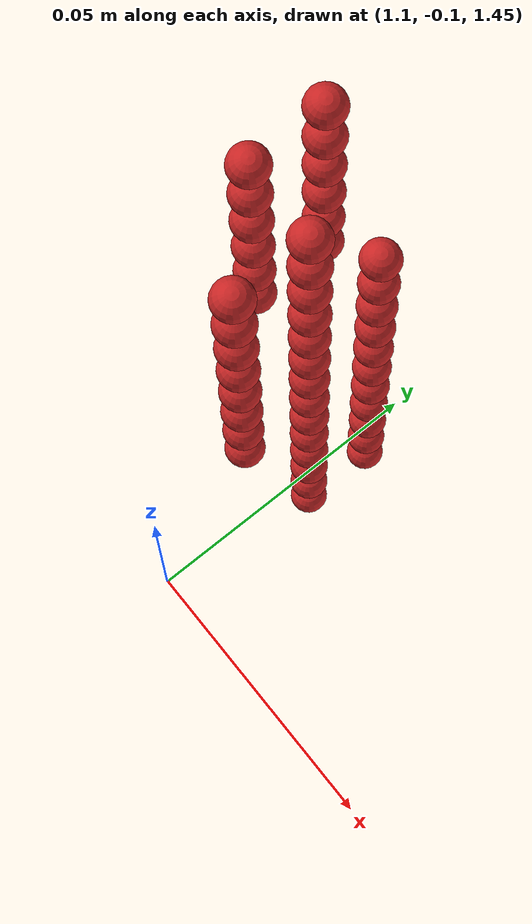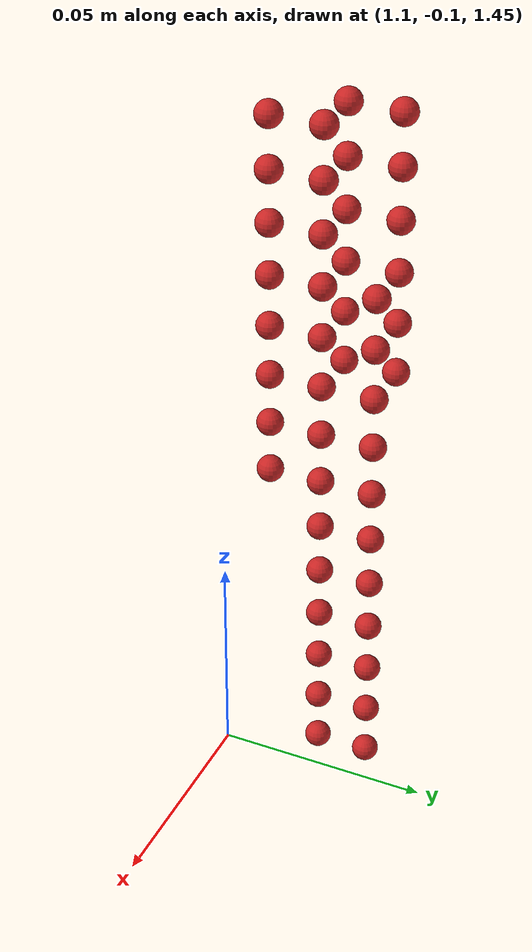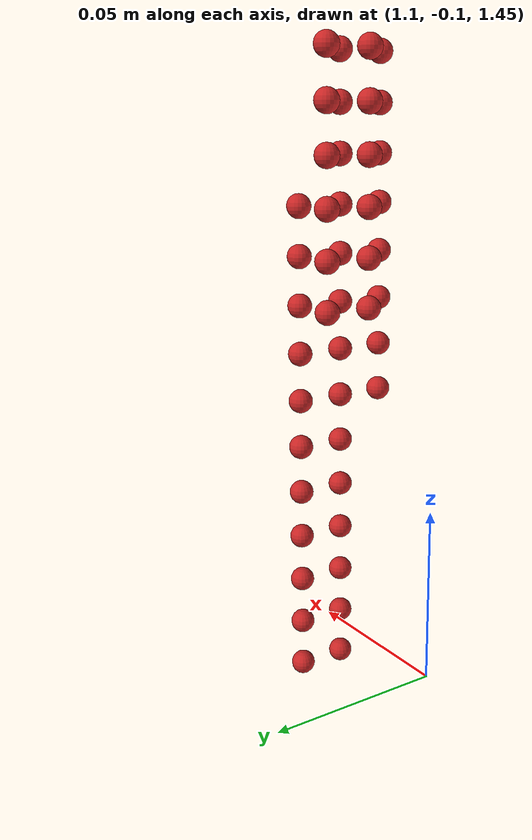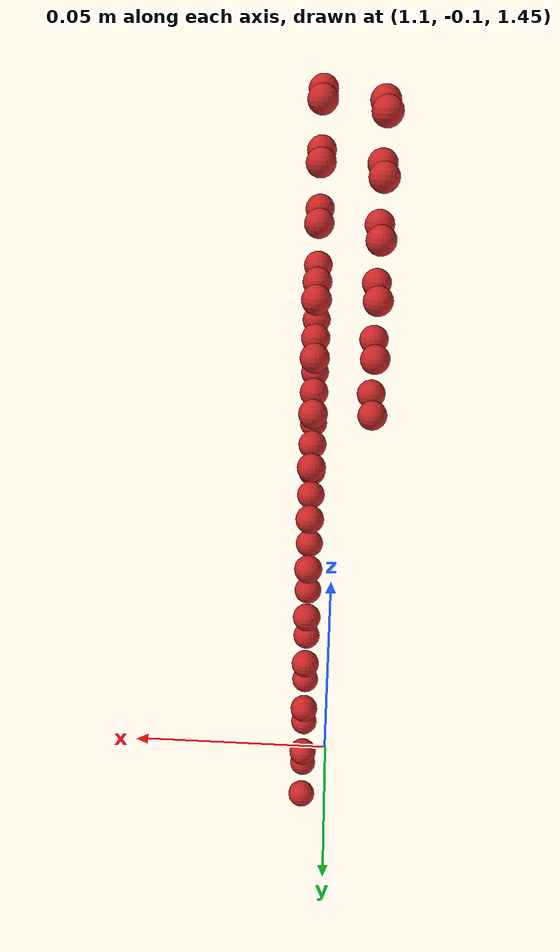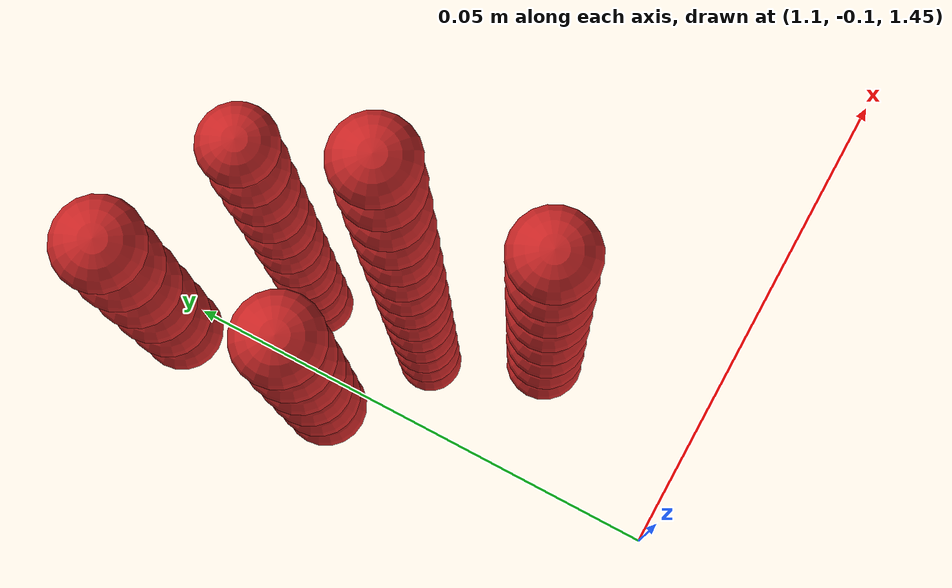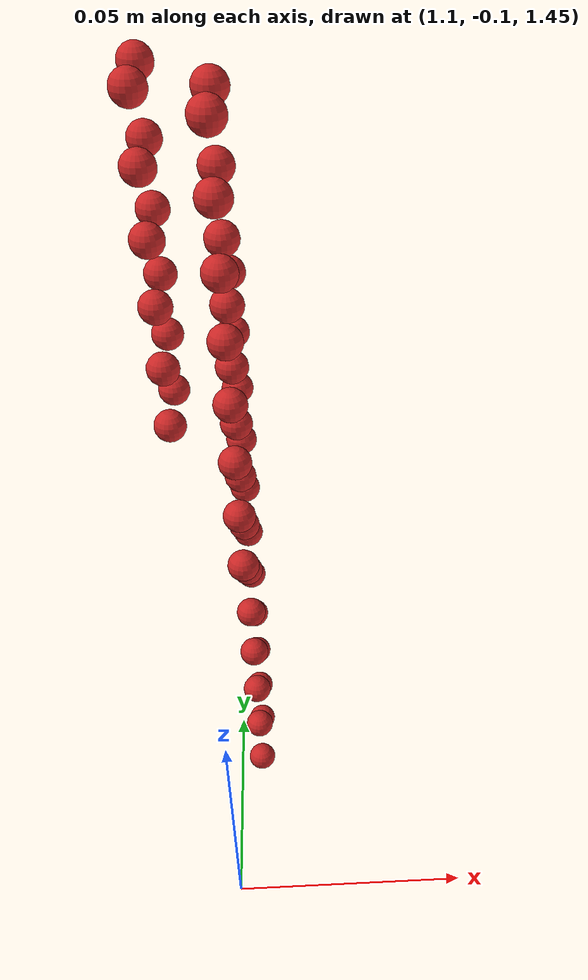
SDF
<sdf version="1.4">
 <world name="default">
  <model name="ground_plane">
   <static>1</static>
   <link name="link">
    <collision name="collision">
     <geometry><plane><normal>0 0 1</normal><size>100 100</size></plane></geometry>
     <surface><friction><ode><mu>100</mu><mu2>50</mu2></ode></friction></surface>
    </collision>
    <visual name="visual">
     <cast_shadows>0</cast_shadows>
     <geometry><plane><normal>0 0 1</normal><size>100 100</size></plane></geometry>
     <material>
      <script><uri>file://media/materials/scripts/gazebo.material</uri><name>Gazebo/Grey</name></script>
     </material>
    </visual>
    <velocity_decay><linear>0</linear><angular>0</angular></velocity_decay>
   </link>
  </model>
  <model name="sphere10">
   <pose>0.552760 -0.036781 0.732288 0 0 0</pose>
   <link name="link">
    <pose>0.552760 -0.036781 0.732288 0 0 0</pose>
    <inertial>
     <mass>0.001</mass>
     <inertia>
      <ixx>0.004</ixx>
      <ixy>0.000000</ixy>
      <ixz>0.000000</ixz>
      <iyy>0.004</iyy>
      <iyz>0.000000</iyz>
      <izz>0.004</izz>
     </inertia>
    </inertial>
    <collision name="collision">
     <surface>
      <contact><ode><kp>10000000000.000000</kp><kd>1</kd></ode></contact>
      <friction><ode><mu>0.01</mu><mu2>0.01</mu2></ode></friction>
     </surface>
     <geometry><sphere><radius>0.003</radius></sphere></geometry>
    </collision>
    <visual name="visual">
     <geometry><sphere><radius>0.003</radius></sphere></geometry>
     <material>
      <script><uri>file://media/materials/scripts/gazebo.material</uri><name>Gazebo/Red</name></script>
     </material>
    </visual>
   </link>
  </model>
  <model name="sphere14">
   <pose>0.552760 -0.030781 0.732288 0 0 0</pose>
   <link name="link">
    <pose>0.552760 -0.030781 0.732288 0 0 0</pose>
    <inertial>
     <mass>0.001</mass>
     <inertia>
      <ixx>0.004</ixx>
      <ixy>0.000000</ixy>
      <ixz>0.000000</ixz>
      <iyy>0.004</iyy>
      <iyz>0.000000</iyz>
      <izz>0.004</izz>
     </inertia>
    </inertial>
    <collision name="collision">
     <surface>
      <contact><ode><kp>10000000000.000000</kp><kd>1</kd></ode></contact>
      <friction><ode><mu>0.01</mu><mu2>0.01</mu2></ode></friction>
     </surface>
     <geometry><sphere><radius>0.003</radius></sphere></geometry>
    </collision>
    <visual name="visual">
     <geometry><sphere><radius>0.003</radius></sphere></geometry>
     <material>
      <script><uri>file://media/materials/scripts/gazebo.material</uri><name>Gazebo/Red</name></script>
     </material>
    </visual>
   </link>
  </model>
  <model name="sphere26">
   <pose>0.552760 -0.036781 0.738288 0 0 0</pose>
   <link name="link">
    <pose>0.552760 -0.036781 0.738288 0 0 0</pose>
    <inertial>
     <mass>0.001</mass>
     <inertia>
      <ixx>0.004</ixx>
      <ixy>0.000000</ixy>
      <ixz>0.000000</ixz>
      <iyy>0.004</iyy>
      <iyz>0.000000</iyz>
      <izz>0.004</izz>
     </inertia>
    </inertial>
    <collision name="collision">
     <surface>
      <contact><ode><kp>10000000000.000000</kp><kd>1</kd></ode></contact>
      <friction><ode><mu>0.01</mu><mu2>0.01</mu2></ode></friction>
     </surface>
     <geometry><sphere><radius>0.003</radius></sphere></geometry>
    </collision>
    <visual name="visual">
     <geometry><sphere><radius>0.003</radius></sphere></geometry>
     <material>
      <script><uri>file://media/materials/scripts/gazebo.material</uri><name>Gazebo/Red</name></script>
     </material>
    </visual>
   </link>
  </model>
  <model name="sphere30">
   <pose>0.552760 -0.030781 0.738288 0 0 0</pose>
   <link name="link">
    <pose>0.552760 -0.030781 0.738288 0 0 0</pose>
    <inertial>
     <mass>0.001</mass>
     <inertia>
      <ixx>0.004</ixx>
      <ixy>0.000000</ixy>
      <ixz>0.000000</ixz>
      <iyy>0.004</iyy>
      <iyz>0.000000</iyz>
      <izz>0.004</izz>
     </inertia>
    </inertial>
    <collision name="collision">
     <surface>
      <contact><ode><kp>10000000000.000000</kp><kd>1</kd></ode></contact>
      <friction><ode><mu>0.01</mu><mu2>0.01</mu2></ode></friction>
     </surface>
     <geometry><sphere><radius>0.003</radius></sphere></geometry>
    </collision>
    <visual name="visual">
     <geometry><sphere><radius>0.003</radius></sphere></geometry>
     <material>
      <script><uri>file://media/materials/scripts/gazebo.material</uri><name>Gazebo/Red</name></script>
     </material>
    </visual>
   </link>
  </model>
  <model name="sphere42">
   <pose>0.552760 -0.036781 0.744288 0 0 0</pose>
   <link name="link">
    <pose>0.552760 -0.036781 0.744288 0 0 0</pose>
    <inertial>
     <mass>0.001</mass>
     <inertia>
      <ixx>0.004</ixx>
      <ixy>0.000000</ixy>
      <ixz>0.000000</ixz>
      <iyy>0.004</iyy>
      <iyz>0.000000</iyz>
      <izz>0.004</izz>
     </inertia>
    </inertial>
    <collision name="collision">
     <surface>
      <contact><ode><kp>10000000000.000000</kp><kd>1</kd></ode></contact>
      <friction><ode><mu>0.01</mu><mu2>0.01</mu2></ode></friction>
     </surface>
     <geometry><sphere><radius>0.003</radius></sphere></geometry>
    </collision>
    <visual name="visual">
     <geometry><sphere><radius>0.003</radius></sphere></geometry>
     <material>
      <script><uri>file://media/materials/scripts/gazebo.material</uri><name>Gazebo/Red</name></script>
     </material>
    </visual>
   </link>
  </model>
  <model name="sphere46">
   <pose>0.552760 -0.030781 0.744288 0 0 0</pose>
   <link name="link">
    <pose>0.552760 -0.030781 0.744288 0 0 0</pose>
    <inertial>
     <mass>0.001</mass>
     <inertia>
      <ixx>0.004</ixx>
      <ixy>0.000000</ixy>
      <ixz>0.000000</ixz>
      <iyy>0.004</iyy>
      <iyz>0.000000</iyz>
      <izz>0.004</izz>
     </inertia>
    </inertial>
    <collision name="collision">
     <surface>
      <contact><ode><kp>10000000000.000000</kp><kd>1</kd></ode></contact>
      <friction><ode><mu>0.01</mu><mu2>0.01</mu2></ode></friction>
     </surface>
     <geometry><sphere><radius>0.003</radius></sphere></geometry>
    </collision>
    <visual name="visual">
     <geometry><sphere><radius>0.003</radius></sphere></geometry>
     <material>
      <script><uri>file://media/materials/scripts/gazebo.material</uri><name>Gazebo/Red</name></script>
     </material>
    </visual>
   </link>
  </model>
  <model name="sphere58">
   <pose>0.552760 -0.036781 0.750288 0 0 0</pose>
   <link name="link">
    <pose>0.552760 -0.036781 0.750288 0 0 0</pose>
    <inertial>
     <mass>0.001</mass>
     <inertia>
      <ixx>0.004</ixx>
      <ixy>0.000000</ixy>
      <ixz>0.000000</ixz>
      <iyy>0.004</iyy>
      <iyz>0.000000</iyz>
      <izz>0.004</izz>
     </inertia>
    </inertial>
    <collision name="collision">
     <surface>
      <contact><ode><kp>10000000000.000000</kp><kd>1</kd></ode></contact>
      <friction><ode><mu>0.01</mu><mu2>0.01</mu2></ode></friction>
     </surface>
     <geometry><sphere><radius>0.003</radius></sphere></geometry>
    </collision>
    <visual name="visual">
     <geometry><sphere><radius>0.003</radius></sphere></geometry>
     <material>
      <script><uri>file://media/materials/scripts/gazebo.material</uri><name>Gazebo/Red</name></script>
     </material>
    </visual>
   </link>
  </model>
  <model name="sphere62">
   <pose>0.552760 -0.030781 0.750288 0 0 0</pose>
   <link name="link">
    <pose>0.552760 -0.030781 0.750288 0 0 0</pose>
    <inertial>
     <mass>0.001</mass>
     <inertia>
      <ixx>0.004</ixx>
      <ixy>0.000000</ixy>
      <ixz>0.000000</ixz>
      <iyy>0.004</iyy>
      <iyz>0.000000</iyz>
      <izz>0.004</izz>
     </inertia>
    </inertial>
    <collision name="collision">
     <surface>
      <contact><ode><kp>10000000000.000000</kp><kd>1</kd></ode></contact>
      <friction><ode><mu>0.01</mu><mu2>0.01</mu2></ode></friction>
     </surface>
     <geometry><sphere><radius>0.003</radius></sphere></geometry>
    </collision>
    <visual name="visual">
     <geometry><sphere><radius>0.003</radius></sphere></geometry>
     <material>
      <script><uri>file://media/materials/scripts/gazebo.material</uri><name>Gazebo/Red</name></script>
     </material>
    </visual>
   </link>
  </model>
  <model name="sphere74">
   <pose>0.552760 -0.036781 0.756288 0 0 0</pose>
   <link name="link">
    <pose>0.552760 -0.036781 0.756288 0 0 0</pose>
    <inertial>
     <mass>0.001</mass>
     <inertia>
      <ixx>0.004</ixx>
      <ixy>0.000000</ixy>
      <ixz>0.000000</ixz>
      <iyy>0.004</iyy>
      <iyz>0.000000</iyz>
      <izz>0.004</izz>
     </inertia>
    </inertial>
    <collision name="collision">
     <surface>
      <contact><ode><kp>10000000000.000000</kp><kd>1</kd></ode></contact>
      <friction><ode><mu>0.01</mu><mu2>0.01</mu2></ode></friction>
     </surface>
     <geometry><sphere><radius>0.003</radius></sphere></geometry>
    </collision>
    <visual name="visual">
     <geometry><sphere><radius>0.003</radius></sphere></geometry>
     <material>
      <script><uri>file://media/materials/scripts/gazebo.material</uri><name>Gazebo/Red</name></script>
     </material>
    </visual>
   </link>
  </model>
  <model name="sphere78">
   <pose>0.552760 -0.030781 0.756288 0 0 0</pose>
   <link name="link">
    <pose>0.552760 -0.030781 0.756288 0 0 0</pose>
    <inertial>
     <mass>0.001</mass>
     <inertia>
      <ixx>0.004</ixx>
      <ixy>0.000000</ixy>
      <ixz>0.000000</ixz>
      <iyy>0.004</iyy>
      <iyz>0.000000</iyz>
      <izz>0.004</izz>
     </inertia>
    </inertial>
    <collision name="collision">
     <surface>
      <contact><ode><kp>10000000000.000000</kp><kd>1</kd></ode></contact>
      <friction><ode><mu>0.01</mu><mu2>0.01</mu2></ode></friction>
     </surface>
     <geometry><sphere><radius>0.003</radius></sphere></geometry>
    </collision>
    <visual name="visual">
     <geometry><sphere><radius>0.003</radius></sphere></geometry>
     <material>
      <script><uri>file://media/materials/scripts/gazebo.material</uri><name>Gazebo/Red</name></script>
     </material>
    </visual>
   </link>
  </model>
  <model name="sphere90">
   <pose>0.552760 -0.036781 0.762288 0 0 0</pose>
   <link name="link">
    <pose>0.552760 -0.036781 0.762288 0 0 0</pose>
    <inertial>
     <mass>0.001</mass>
     <inertia>
      <ixx>0.004</ixx>
      <ixy>0.000000</ixy>
      <ixz>0.000000</ixz>
      <iyy>0.004</iyy>
      <iyz>0.000000</iyz>
      <izz>0.004</izz>
     </inertia>
    </inertial>
    <collision name="collision">
     <surface>
      <contact><ode><kp>10000000000.000000</kp><kd>1</kd></ode></contact>
      <friction><ode><mu>0.01</mu><mu2>0.01</mu2></ode></friction>
     </surface>
     <geometry><sphere><radius>0.003</radius></sphere></geometry>
    </collision>
    <visual name="visual">
     <geometry><sphere><radius>0.003</radius></sphere></geometry>
     <material>
      <script><uri>file://media/materials/scripts/gazebo.material</uri><name>Gazebo/Red</name></script>
     </material>
    </visual>
   </link>
  </model>
  <model name="sphere94">
   <pose>0.552760 -0.030781 0.762288 0 0 0</pose>
   <link name="link">
    <pose>0.552760 -0.030781 0.762288 0 0 0</pose>
    <inertial>
     <mass>0.001</mass>
     <inertia>
      <ixx>0.004</ixx>
      <ixy>0.000000</ixy>
      <ixz>0.000000</ixz>
      <iyy>0.004</iyy>
      <iyz>0.000000</iyz>
      <izz>0.004</izz>
     </inertia>
    </inertial>
    <collision name="collision">
     <surface>
      <contact><ode><kp>10000000000.000000</kp><kd>1</kd></ode></contact>
      <friction><ode><mu>0.01</mu><mu2>0.01</mu2></ode></friction>
     </surface>
     <geometry><sphere><radius>0.003</radius></sphere></geometry>
    </collision>
    <visual name="visual">
     <geometry><sphere><radius>0.003</radius></sphere></geometry>
     <material>
      <script><uri>file://media/materials/scripts/gazebo.material</uri><name>Gazebo/Red</name></script>
     </material>
    </visual>
   </link>
  </model>
  <model name="sphere102">
   <pose>0.552760 -0.042781 0.768288 0 0 0</pose>
   <link name="link">
    <pose>0.552760 -0.042781 0.768288 0 0 0</pose>
    <inertial>
     <mass>0.001</mass>
     <inertia>
      <ixx>0.004</ixx>
      <ixy>0.000000</ixy>
      <ixz>0.000000</ixz>
      <iyy>0.004</iyy>
      <iyz>0.000000</iyz>
      <izz>0.004</izz>
     </inertia>
    </inertial>
    <collision name="collision">
     <surface>
      <contact><ode><kp>10000000000.000000</kp><kd>1</kd></ode></contact>
      <friction><ode><mu>0.01</mu><mu2>0.01</mu2></ode></friction>
     </surface>
     <geometry><sphere><radius>0.003</radius></sphere></geometry>
    </collision>
    <visual name="visual">
     <geometry><sphere><radius>0.003</radius></sphere></geometry>
     <material>
      <script><uri>file://media/materials/scripts/gazebo.material</uri><name>Gazebo/Red</name></script>
     </material>
    </visual>
   </link>
  </model>
  <model name="sphere106">
   <pose>0.552760 -0.036781 0.768288 0 0 0</pose>
   <link name="link">
    <pose>0.552760 -0.036781 0.768288 0 0 0</pose>
    <inertial>
     <mass>0.001</mass>
     <inertia>
      <ixx>0.004</ixx>
      <ixy>0.000000</ixy>
      <ixz>0.000000</ixz>
      <iyy>0.004</iyy>
      <iyz>0.000000</iyz>
      <izz>0.004</izz>
     </inertia>
    </inertial>
    <collision name="collision">
     <surface>
      <contact><ode><kp>10000000000.000000</kp><kd>1</kd></ode></contact>
      <friction><ode><mu>0.01</mu><mu2>0.01</mu2></ode></friction>
     </surface>
     <geometry><sphere><radius>0.003</radius></sphere></geometry>
    </collision>
    <visual name="visual">
     <geometry><sphere><radius>0.003</radius></sphere></geometry>
     <material>
      <script><uri>file://media/materials/scripts/gazebo.material</uri><name>Gazebo/Red</name></script>
     </material>
    </visual>
   </link>
  </model>
  <model name="sphere110">
   <pose>0.552760 -0.030781 0.768288 0 0 0</pose>
   <link name="link">
    <pose>0.552760 -0.030781 0.768288 0 0 0</pose>
    <inertial>
     <mass>0.001</mass>
     <inertia>
      <ixx>0.004</ixx>
      <ixy>0.000000</ixy>
      <ixz>0.000000</ixz>
      <iyy>0.004</iyy>
      <iyz>0.000000</iyz>
      <izz>0.004</izz>
     </inertia>
    </inertial>
    <collision name="collision">
     <surface>
      <contact><ode><kp>10000000000.000000</kp><kd>1</kd></ode></contact>
      <friction><ode><mu>0.01</mu><mu2>0.01</mu2></ode></friction>
     </surface>
     <geometry><sphere><radius>0.003</radius></sphere></geometry>
    </collision>
    <visual name="visual">
     <geometry><sphere><radius>0.003</radius></sphere></geometry>
     <material>
      <script><uri>file://media/materials/scripts/gazebo.material</uri><name>Gazebo/Red</name></script>
     </material>
    </visual>
   </link>
  </model>
  <model name="sphere118">
   <pose>0.552760 -0.042781 0.774288 0 0 0</pose>
   <link name="link">
    <pose>0.552760 -0.042781 0.774288 0 0 0</pose>
    <inertial>
     <mass>0.001</mass>
     <inertia>
      <ixx>0.004</ixx>
      <ixy>0.000000</ixy>
      <ixz>0.000000</ixz>
      <iyy>0.004</iyy>
      <iyz>0.000000</iyz>
      <izz>0.004</izz>
     </inertia>
    </inertial>
    <collision name="collision">
     <surface>
      <contact><ode><kp>10000000000.000000</kp><kd>1</kd></ode></contact>
      <friction><ode><mu>0.01</mu><mu2>0.01</mu2></ode></friction>
     </surface>
     <geometry><sphere><radius>0.003</radius></sphere></geometry>
    </collision>
    <visual name="visual">
     <geometry><sphere><radius>0.003</radius></sphere></geometry>
     <material>
      <script><uri>file://media/materials/scripts/gazebo.material</uri><name>Gazebo/Red</name></script>
     </material>
    </visual>
   </link>
  </model>
  <model name="sphere122">
   <pose>0.552760 -0.036781 0.774288 0 0 0</pose>
   <link name="link">
    <pose>0.552760 -0.036781 0.774288 0 0 0</pose>
    <inertial>
     <mass>0.001</mass>
     <inertia>
      <ixx>0.004</ixx>
      <ixy>0.000000</ixy>
      <ixz>0.000000</ixz>
      <iyy>0.004</iyy>
      <iyz>0.000000</iyz>
      <izz>0.004</izz>
     </inertia>
    </inertial>
    <collision name="collision">
     <surface>
      <contact><ode><kp>10000000000.000000</kp><kd>1</kd></ode></contact>
      <friction><ode><mu>0.01</mu><mu2>0.01</mu2></ode></friction>
     </surface>
     <geometry><sphere><radius>0.003</radius></sphere></geometry>
    </collision>
    <visual name="visual">
     <geometry><sphere><radius>0.003</radius></sphere></geometry>
     <material>
      <script><uri>file://media/materials/scripts/gazebo.material</uri><name>Gazebo/Red</name></script>
     </material>
    </visual>
   </link>
  </model>
  <model name="sphere126">
   <pose>0.552760 -0.030781 0.774288 0 0 0</pose>
   <link name="link">
    <pose>0.552760 -0.030781 0.774288 0 0 0</pose>
    <inertial>
     <mass>0.001</mass>
     <inertia>
      <ixx>0.004</ixx>
      <ixy>0.000000</ixy>
      <ixz>0.000000</ixz>
      <iyy>0.004</iyy>
      <iyz>0.000000</iyz>
      <izz>0.004</izz>
     </inertia>
    </inertial>
    <collision name="collision">
     <surface>
      <contact><ode><kp>10000000000.000000</kp><kd>1</kd></ode></contact>
      <friction><ode><mu>0.01</mu><mu2>0.01</mu2></ode></friction>
     </surface>
     <geometry><sphere><radius>0.003</radius></sphere></geometry>
    </collision>
    <visual name="visual">
     <geometry><sphere><radius>0.003</radius></sphere></geometry>
     <material>
      <script><uri>file://media/materials/scripts/gazebo.material</uri><name>Gazebo/Red</name></script>
     </material>
    </visual>
   </link>
  </model>
  <model name="sphere134">
   <pose>0.552760 -0.042781 0.780288 0 0 0</pose>
   <link name="link">
    <pose>0.552760 -0.042781 0.780288 0 0 0</pose>
    <inertial>
     <mass>0.001</mass>
     <inertia>
      <ixx>0.004</ixx>
      <ixy>0.000000</ixy>
      <ixz>0.000000</ixz>
      <iyy>0.004</iyy>
      <iyz>0.000000</iyz>
      <izz>0.004</izz>
     </inertia>
    </inertial>
    <collision name="collision">
     <surface>
      <contact><ode><kp>10000000000.000000</kp><kd>1</kd></ode></contact>
      <friction><ode><mu>0.01</mu><mu2>0.01</mu2></ode></friction>
     </surface>
     <geometry><sphere><radius>0.003</radius></sphere></geometry>
    </collision>
    <visual name="visual">
     <geometry><sphere><radius>0.003</radius></sphere></geometry>
     <material>
      <script><uri>file://media/materials/scripts/gazebo.material</uri><name>Gazebo/Red</name></script>
     </material>
    </visual>
   </link>
  </model>
  <model name="sphere137">
   <pose>0.546760 -0.036781 0.780288 0 0 0</pose>
   <link name="link">
    <pose>0.546760 -0.036781 0.780288 0 0 0</pose>
    <inertial>
     <mass>0.001</mass>
     <inertia>
      <ixx>0.004</ixx>
      <ixy>0.000000</ixy>
      <ixz>0.000000</ixz>
      <iyy>0.004</iyy>
      <iyz>0.000000</iyz>
      <izz>0.004</izz>
     </inertia>
    </inertial>
    <collision name="collision">
     <surface>
      <contact><ode><kp>10000000000.000000</kp><kd>1</kd></ode></contact>
      <friction><ode><mu>0.01</mu><mu2>0.01</mu2></ode></friction>
     </surface>
     <geometry><sphere><radius>0.003</radius></sphere></geometry>
    </collision>
    <visual name="visual">
     <geometry><sphere><radius>0.003</radius></sphere></geometry>
     <material>
      <script><uri>file://media/materials/scripts/gazebo.material</uri><name>Gazebo/Red</name></script>
     </material>
    </visual>
   </link>
  </model>
  <model name="sphere138">
   <pose>0.552760 -0.036781 0.780288 0 0 0</pose>
   <link name="link">
    <pose>0.552760 -0.036781 0.780288 0 0 0</pose>
    <inertial>
     <mass>0.001</mass>
     <inertia>
      <ixx>0.004</ixx>
      <ixy>0.000000</ixy>
      <ixz>0.000000</ixz>
      <iyy>0.004</iyy>
      <iyz>0.000000</iyz>
      <izz>0.004</izz>
     </inertia>
    </inertial>
    <collision name="collision">
     <surface>
      <contact><ode><kp>10000000000.000000</kp><kd>1</kd></ode></contact>
      <friction><ode><mu>0.01</mu><mu2>0.01</mu2></ode></friction>
     </surface>
     <geometry><sphere><radius>0.003</radius></sphere></geometry>
    </collision>
    <visual name="visual">
     <geometry><sphere><radius>0.003</radius></sphere></geometry>
     <material>
      <script><uri>file://media/materials/scripts/gazebo.material</uri><name>Gazebo/Red</name></script>
     </material>
    </visual>
   </link>
  </model>
  <model name="sphere141">
   <pose>0.546760 -0.030781 0.780288 0 0 0</pose>
   <link name="link">
    <pose>0.546760 -0.030781 0.780288 0 0 0</pose>
    <inertial>
     <mass>0.001</mass>
     <inertia>
      <ixx>0.004</ixx>
      <ixy>0.000000</ixy>
      <ixz>0.000000</ixz>
      <iyy>0.004</iyy>
      <iyz>0.000000</iyz>
      <izz>0.004</izz>
     </inertia>
    </inertial>
    <collision name="collision">
     <surface>
      <contact><ode><kp>10000000000.000000</kp><kd>1</kd></ode></contact>
      <friction><ode><mu>0.01</mu><mu2>0.01</mu2></ode></friction>
     </surface>
     <geometry><sphere><radius>0.003</radius></sphere></geometry>
    </collision>
    <visual name="visual">
     <geometry><sphere><radius>0.003</radius></sphere></geometry>
     <material>
      <script><uri>file://media/materials/scripts/gazebo.material</uri><name>Gazebo/Red</name></script>
     </material>
    </visual>
   </link>
  </model>
  <model name="sphere142">
   <pose>0.552760 -0.030781 0.780288 0 0 0</pose>
   <link name="link">
    <pose>0.552760 -0.030781 0.780288 0 0 0</pose>
    <inertial>
     <mass>0.001</mass>
     <inertia>
      <ixx>0.004</ixx>
      <ixy>0.000000</ixy>
      <ixz>0.000000</ixz>
      <iyy>0.004</iyy>
      <iyz>0.000000</iyz>
      <izz>0.004</izz>
     </inertia>
    </inertial>
    <collision name="collision">
     <surface>
      <contact><ode><kp>10000000000.000000</kp><kd>1</kd></ode></contact>
      <friction><ode><mu>0.01</mu><mu2>0.01</mu2></ode></friction>
     </surface>
     <geometry><sphere><radius>0.003</radius></sphere></geometry>
    </collision>
    <visual name="visual">
     <geometry><sphere><radius>0.003</radius></sphere></geometry>
     <material>
      <script><uri>file://media/materials/scripts/gazebo.material</uri><name>Gazebo/Red</name></script>
     </material>
    </visual>
   </link>
  </model>
  <model name="sphere150">
   <pose>0.552760 -0.042781 0.786288 0 0 0</pose>
   <link name="link">
    <pose>0.552760 -0.042781 0.786288 0 0 0</pose>
    <inertial>
     <mass>0.001</mass>
     <inertia>
      <ixx>0.004</ixx>
      <ixy>0.000000</ixy>
      <ixz>0.000000</ixz>
      <iyy>0.004</iyy>
      <iyz>0.000000</iyz>
      <izz>0.004</izz>
     </inertia>
    </inertial>
    <collision name="collision">
     <surface>
      <contact><ode><kp>10000000000.000000</kp><kd>1</kd></ode></contact>
      <friction><ode><mu>0.01</mu><mu2>0.01</mu2></ode></friction>
     </surface>
     <geometry><sphere><radius>0.003</radius></sphere></geometry>
    </collision>
    <visual name="visual">
     <geometry><sphere><radius>0.003</radius></sphere></geometry>
     <material>
      <script><uri>file://media/materials/scripts/gazebo.material</uri><name>Gazebo/Red</name></script>
     </material>
    </visual>
   </link>
  </model>
  <model name="sphere153">
   <pose>0.546760 -0.036781 0.786288 0 0 0</pose>
   <link name="link">
    <pose>0.546760 -0.036781 0.786288 0 0 0</pose>
    <inertial>
     <mass>0.001</mass>
     <inertia>
      <ixx>0.004</ixx>
      <ixy>0.000000</ixy>
      <ixz>0.000000</ixz>
      <iyy>0.004</iyy>
      <iyz>0.000000</iyz>
      <izz>0.004</izz>
     </inertia>
    </inertial>
    <collision name="collision">
     <surface>
      <contact><ode><kp>10000000000.000000</kp><kd>1</kd></ode></contact>
      <friction><ode><mu>0.01</mu><mu2>0.01</mu2></ode></friction>
     </surface>
     <geometry><sphere><radius>0.003</radius></sphere></geometry>
    </collision>
    <visual name="visual">
     <geometry><sphere><radius>0.003</radius></sphere></geometry>
     <material>
      <script><uri>file://media/materials/scripts/gazebo.material</uri><name>Gazebo/Red</name></script>
     </material>
    </visual>
   </link>
  </model>
  <model name="sphere154">
   <pose>0.552760 -0.036781 0.786288 0 0 0</pose>
   <link name="link">
    <pose>0.552760 -0.036781 0.786288 0 0 0</pose>
    <inertial>
     <mass>0.001</mass>
     <inertia>
      <ixx>0.004</ixx>
      <ixy>0.000000</ixy>
      <ixz>0.000000</ixz>
      <iyy>0.004</iyy>
      <iyz>0.000000</iyz>
      <izz>0.004</izz>
     </inertia>
    </inertial>
    <collision name="collision">
     <surface>
      <contact><ode><kp>10000000000.000000</kp><kd>1</kd></ode></contact>
      <friction><ode><mu>0.01</mu><mu2>0.01</mu2></ode></friction>
     </surface>
     <geometry><sphere><radius>0.003</radius></sphere></geometry>
    </collision>
    <visual name="visual">
     <geometry><sphere><radius>0.003</radius></sphere></geometry>
     <material>
      <script><uri>file://media/materials/scripts/gazebo.material</uri><name>Gazebo/Red</name></script>
     </material>
    </visual>
   </link>
  </model>
  <model name="sphere157">
   <pose>0.546760 -0.030781 0.786288 0 0 0</pose>
   <link name="link">
    <pose>0.546760 -0.030781 0.786288 0 0 0</pose>
    <inertial>
     <mass>0.001</mass>
     <inertia>
      <ixx>0.004</ixx>
      <ixy>0.000000</ixy>
      <ixz>0.000000</ixz>
      <iyy>0.004</iyy>
      <iyz>0.000000</iyz>
      <izz>0.004</izz>
     </inertia>
    </inertial>
    <collision name="collision">
     <surface>
      <contact><ode><kp>10000000000.000000</kp><kd>1</kd></ode></contact>
      <friction><ode><mu>0.01</mu><mu2>0.01</mu2></ode></friction>
     </surface>
     <geometry><sphere><radius>0.003</radius></sphere></geometry>
    </collision>
    <visual name="visual">
     <geometry><sphere><radius>0.003</radius></sphere></geometry>
     <material>
      <script><uri>file://media/materials/scripts/gazebo.material</uri><name>Gazebo/Red</name></script>
     </material>
    </visual>
   </link>
  </model>
  <model name="sphere158">
   <pose>0.552760 -0.030781 0.786288 0 0 0</pose>
   <link name="link">
    <pose>0.552760 -0.030781 0.786288 0 0 0</pose>
    <inertial>
     <mass>0.001</mass>
     <inertia>
      <ixx>0.004</ixx>
      <ixy>0.000000</ixy>
      <ixz>0.000000</ixz>
      <iyy>0.004</iyy>
      <iyz>0.000000</iyz>
      <izz>0.004</izz>
     </inertia>
    </inertial>
    <collision name="collision">
     <surface>
      <contact><ode><kp>10000000000.000000</kp><kd>1</kd></ode></contact>
      <friction><ode><mu>0.01</mu><mu2>0.01</mu2></ode></friction>
     </surface>
     <geometry><sphere><radius>0.003</radius></sphere></geometry>
    </collision>
    <visual name="visual">
     <geometry><sphere><radius>0.003</radius></sphere></geometry>
     <material>
      <script><uri>file://media/materials/scripts/gazebo.material</uri><name>Gazebo/Red</name></script>
     </material>
    </visual>
   </link>
  </model>
  <model name="sphere166">
   <pose>0.552760 -0.042781 0.792288 0 0 0</pose>
   <link name="link">
    <pose>0.552760 -0.042781 0.792288 0 0 0</pose>
    <inertial>
     <mass>0.001</mass>
     <inertia>
      <ixx>0.004</ixx>
      <ixy>0.000000</ixy>
      <ixz>0.000000</ixz>
      <iyy>0.004</iyy>
      <iyz>0.000000</iyz>
      <izz>0.004</izz>
     </inertia>
    </inertial>
    <collision name="collision">
     <surface>
      <contact><ode><kp>10000000000.000000</kp><kd>1</kd></ode></contact>
      <friction><ode><mu>0.01</mu><mu2>0.01</mu2></ode></friction>
     </surface>
     <geometry><sphere><radius>0.003</radius></sphere></geometry>
    </collision>
    <visual name="visual">
     <geometry><sphere><radius>0.003</radius></sphere></geometry>
     <material>
      <script><uri>file://media/materials/scripts/gazebo.material</uri><name>Gazebo/Red</name></script>
     </material>
    </visual>
   </link>
  </model>
  <model name="sphere169">
   <pose>0.546760 -0.036781 0.792288 0 0 0</pose>
   <link name="link">
    <pose>0.546760 -0.036781 0.792288 0 0 0</pose>
    <inertial>
     <mass>0.001</mass>
     <inertia>
      <ixx>0.004</ixx>
      <ixy>0.000000</ixy>
      <ixz>0.000000</ixz>
      <iyy>0.004</iyy>
      <iyz>0.000000</iyz>
      <izz>0.004</izz>
     </inertia>
    </inertial>
    <collision name="collision">
     <surface>
      <contact><ode><kp>10000000000.000000</kp><kd>1</kd></ode></contact>
      <friction><ode><mu>0.01</mu><mu2>0.01</mu2></ode></friction>
     </surface>
     <geometry><sphere><radius>0.003</radius></sphere></geometry>
    </collision>
    <visual name="visual">
     <geometry><sphere><radius>0.003</radius></sphere></geometry>
     <material>
      <script><uri>file://media/materials/scripts/gazebo.material</uri><name>Gazebo/Red</name></script>
     </material>
    </visual>
   </link>
  </model>
  <model name="sphere170">
   <pose>0.552760 -0.036781 0.792288 0 0 0</pose>
   <link name="link">
    <pose>0.552760 -0.036781 0.792288 0 0 0</pose>
    <inertial>
     <mass>0.001</mass>
     <inertia>
      <ixx>0.004</ixx>
      <ixy>0.000000</ixy>
      <ixz>0.000000</ixz>
      <iyy>0.004</iyy>
      <iyz>0.000000</iyz>
      <izz>0.004</izz>
     </inertia>
    </inertial>
    <collision name="collision">
     <surface>
      <contact><ode><kp>10000000000.000000</kp><kd>1</kd></ode></contact>
      <friction><ode><mu>0.01</mu><mu2>0.01</mu2></ode></friction>
     </surface>
     <geometry><sphere><radius>0.003</radius></sphere></geometry>
    </collision>
    <visual name="visual">
     <geometry><sphere><radius>0.003</radius></sphere></geometry>
     <material>
      <script><uri>file://media/materials/scripts/gazebo.material</uri><name>Gazebo/Red</name></script>
     </material>
    </visual>
   </link>
  </model>
  <model name="sphere173">
   <pose>0.546760 -0.030781 0.792288 0 0 0</pose>
   <link name="link">
    <pose>0.546760 -0.030781 0.792288 0 0 0</pose>
    <inertial>
     <mass>0.001</mass>
     <inertia>
      <ixx>0.004</ixx>
      <ixy>0.000000</ixy>
      <ixz>0.000000</ixz>
      <iyy>0.004</iyy>
      <iyz>0.000000</iyz>
      <izz>0.004</izz>
     </inertia>
    </inertial>
    <collision name="collision">
     <surface>
      <contact><ode><kp>10000000000.000000</kp><kd>1</kd></ode></contact>
      <friction><ode><mu>0.01</mu><mu2>0.01</mu2></ode></friction>
     </surface>
     <geometry><sphere><radius>0.003</radius></sphere></geometry>
    </collision>
    <visual name="visual">
     <geometry><sphere><radius>0.003</radius></sphere></geometry>
     <material>
      <script><uri>file://media/materials/scripts/gazebo.material</uri><name>Gazebo/Red</name></script>
     </material>
    </visual>
   </link>
  </model>
  <model name="sphere174">
   <pose>0.552760 -0.030781 0.792288 0 0 0</pose>
   <link name="link">
    <pose>0.552760 -0.030781 0.792288 0 0 0</pose>
    <inertial>
     <mass>0.001</mass>
     <inertia>
      <ixx>0.004</ixx>
      <ixy>0.000000</ixy>
      <ixz>0.000000</ixz>
      <iyy>0.004</iyy>
      <iyz>0.000000</iyz>
      <izz>0.004</izz>
     </inertia>
    </inertial>
    <collision name="collision">
     <surface>
      <contact><ode><kp>10000000000.000000</kp><kd>1</kd></ode></contact>
      <friction><ode><mu>0.01</mu><mu2>0.01</mu2></ode></friction>
     </surface>
     <geometry><sphere><radius>0.003</radius></sphere></geometry>
    </collision>
    <visual name="visual">
     <geometry><sphere><radius>0.003</radius></sphere></geometry>
     <material>
      <script><uri>file://media/materials/scripts/gazebo.material</uri><name>Gazebo/Red</name></script>
     </material>
    </visual>
   </link>
  </model>
  <model name="sphere182">
   <pose>0.552760 -0.042781 0.798288 0 0 0</pose>
   <link name="link">
    <pose>0.552760 -0.042781 0.798288 0 0 0</pose>
    <inertial>
     <mass>0.001</mass>
     <inertia>
      <ixx>0.004</ixx>
      <ixy>0.000000</ixy>
      <ixz>0.000000</ixz>
      <iyy>0.004</iyy>
      <iyz>0.000000</iyz>
      <izz>0.004</izz>
     </inertia>
    </inertial>
    <collision name="collision">
     <surface>
      <contact><ode><kp>10000000000.000000</kp><kd>1</kd></ode></contact>
      <friction><ode><mu>0.01</mu><mu2>0.01</mu2></ode></friction>
     </surface>
     <geometry><sphere><radius>0.003</radius></sphere></geometry>
    </collision>
    <visual name="visual">
     <geometry><sphere><radius>0.003</radius></sphere></geometry>
     <material>
      <script><uri>file://media/materials/scripts/gazebo.material</uri><name>Gazebo/Red</name></script>
     </material>
    </visual>
   </link>
  </model>
  <model name="sphere185">
   <pose>0.546760 -0.036781 0.798288 0 0 0</pose>
   <link name="link">
    <pose>0.546760 -0.036781 0.798288 0 0 0</pose>
    <inertial>
     <mass>0.001</mass>
     <inertia>
      <ixx>0.004</ixx>
      <ixy>0.000000</ixy>
      <ixz>0.000000</ixz>
      <iyy>0.004</iyy>
      <iyz>0.000000</iyz>
      <izz>0.004</izz>
     </inertia>
    </inertial>
    <collision name="collision">
     <surface>
      <contact><ode><kp>10000000000.000000</kp><kd>1</kd></ode></contact>
      <friction><ode><mu>0.01</mu><mu2>0.01</mu2></ode></friction>
     </surface>
     <geometry><sphere><radius>0.003</radius></sphere></geometry>
    </collision>
    <visual name="visual">
     <geometry><sphere><radius>0.003</radius></sphere></geometry>
     <material>
      <script><uri>file://media/materials/scripts/gazebo.material</uri><name>Gazebo/Red</name></script>
     </material>
    </visual>
   </link>
  </model>
  <model name="sphere186">
   <pose>0.552760 -0.036781 0.798288 0 0 0</pose>
   <link name="link">
    <pose>0.552760 -0.036781 0.798288 0 0 0</pose>
    <inertial>
     <mass>0.001</mass>
     <inertia>
      <ixx>0.004</ixx>
      <ixy>0.000000</ixy>
      <ixz>0.000000</ixz>
      <iyy>0.004</iyy>
      <iyz>0.000000</iyz>
      <izz>0.004</izz>
     </inertia>
    </inertial>
    <collision name="collision">
     <surface>
      <contact><ode><kp>10000000000.000000</kp><kd>1</kd></ode></contact>
      <friction><ode><mu>0.01</mu><mu2>0.01</mu2></ode></friction>
     </surface>
     <geometry><sphere><radius>0.003</radius></sphere></geometry>
    </collision>
    <visual name="visual">
     <geometry><sphere><radius>0.003</radius></sphere></geometry>
     <material>
      <script><uri>file://media/materials/scripts/gazebo.material</uri><name>Gazebo/Red</name></script>
     </material>
    </visual>
   </link>
  </model>
  <model name="sphere189">
   <pose>0.546760 -0.030781 0.798288 0 0 0</pose>
   <link name="link">
    <pose>0.546760 -0.030781 0.798288 0 0 0</pose>
    <inertial>
     <mass>0.001</mass>
     <inertia>
      <ixx>0.004</ixx>
      <ixy>0.000000</ixy>
      <ixz>0.000000</ixz>
      <iyy>0.004</iyy>
      <iyz>0.000000</iyz>
      <izz>0.004</izz>
     </inertia>
    </inertial>
    <collision name="collision">
     <surface>
      <contact><ode><kp>10000000000.000000</kp><kd>1</kd></ode></contact>
      <friction><ode><mu>0.01</mu><mu2>0.01</mu2></ode></friction>
     </surface>
     <geometry><sphere><radius>0.003</radius></sphere></geometry>
    </collision>
    <visual name="visual">
     <geometry><sphere><radius>0.003</radius></sphere></geometry>
     <material>
      <script><uri>file://media/materials/scripts/gazebo.material</uri><name>Gazebo/Red</name></script>
     </material>
    </visual>
   </link>
  </model>
  <model name="sphere198">
   <pose>0.552760 -0.042781 0.804288 0 0 0</pose>
   <link name="link">
    <pose>0.552760 -0.042781 0.804288 0 0 0</pose>
    <inertial>
     <mass>0.001</mass>
     <inertia>
      <ixx>0.004</ixx>
      <ixy>0.000000</ixy>
      <ixz>0.000000</ixz>
      <iyy>0.004</iyy>
      <iyz>0.000000</iyz>
      <izz>0.004</izz>
     </inertia>
    </inertial>
    <collision name="collision">
     <surface>
      <contact><ode><kp>10000000000.000000</kp><kd>1</kd></ode></contact>
      <friction><ode><mu>0.01</mu><mu2>0.01</mu2></ode></friction>
     </surface>
     <geometry><sphere><radius>0.003</radius></sphere></geometry>
    </collision>
    <visual name="visual">
     <geometry><sphere><radius>0.003</radius></sphere></geometry>
     <material>
      <script><uri>file://media/materials/scripts/gazebo.material</uri><name>Gazebo/Red</name></script>
     </material>
    </visual>
   </link>
  </model>
  <model name="sphere201">
   <pose>0.546760 -0.036781 0.804288 0 0 0</pose>
   <link name="link">
    <pose>0.546760 -0.036781 0.804288 0 0 0</pose>
    <inertial>
     <mass>0.001</mass>
     <inertia>
      <ixx>0.004</ixx>
      <ixy>0.000000</ixy>
      <ixz>0.000000</ixz>
      <iyy>0.004</iyy>
      <iyz>0.000000</iyz>
      <izz>0.004</izz>
     </inertia>
    </inertial>
    <collision name="collision">
     <surface>
      <contact><ode><kp>10000000000.000000</kp><kd>1</kd></ode></contact>
      <friction><ode><mu>0.01</mu><mu2>0.01</mu2></ode></friction>
     </surface>
     <geometry><sphere><radius>0.003</radius></sphere></geometry>
    </collision>
    <visual name="visual">
     <geometry><sphere><radius>0.003</radius></sphere></geometry>
     <material>
      <script><uri>file://media/materials/scripts/gazebo.material</uri><name>Gazebo/Red</name></script>
     </material>
    </visual>
   </link>
  </model>
  <model name="sphere202">
   <pose>0.552760 -0.036781 0.804288 0 0 0</pose>
   <link name="link">
    <pose>0.552760 -0.036781 0.804288 0 0 0</pose>
    <inertial>
     <mass>0.001</mass>
     <inertia>
      <ixx>0.004</ixx>
      <ixy>0.000000</ixy>
      <ixz>0.000000</ixz>
      <iyy>0.004</iyy>
      <iyz>0.000000</iyz>
      <izz>0.004</izz>
     </inertia>
    </inertial>
    <collision name="collision">
     <surface>
      <contact><ode><kp>10000000000.000000</kp><kd>1</kd></ode></contact>
      <friction><ode><mu>0.01</mu><mu2>0.01</mu2></ode></friction>
     </surface>
     <geometry><sphere><radius>0.003</radius></sphere></geometry>
    </collision>
    <visual name="visual">
     <geometry><sphere><radius>0.003</radius></sphere></geometry>
     <material>
      <script><uri>file://media/materials/scripts/gazebo.material</uri><name>Gazebo/Red</name></script>
     </material>
    </visual>
   </link>
  </model>
  <model name="sphere205">
   <pose>0.546760 -0.030781 0.804288 0 0 0</pose>
   <link name="link">
    <pose>0.546760 -0.030781 0.804288 0 0 0</pose>
    <inertial>
     <mass>0.001</mass>
     <inertia>
      <ixx>0.004</ixx>
      <ixy>0.000000</ixy>
      <ixz>0.000000</ixz>
      <iyy>0.004</iyy>
      <iyz>0.000000</iyz>
      <izz>0.004</izz>
     </inertia>
    </inertial>
    <collision name="collision">
     <surface>
      <contact><ode><kp>10000000000.000000</kp><kd>1</kd></ode></contact>
      <friction><ode><mu>0.01</mu><mu2>0.01</mu2></ode></friction>
     </surface>
     <geometry><sphere><radius>0.003</radius></sphere></geometry>
    </collision>
    <visual name="visual">
     <geometry><sphere><radius>0.003</radius></sphere></geometry>
     <material>
      <script><uri>file://media/materials/scripts/gazebo.material</uri><name>Gazebo/Red</name></script>
     </material>
    </visual>
   </link>
  </model>
  <model name="sphere214">
   <pose>0.552760 -0.042781 0.810288 0 0 0</pose>
   <link name="link">
    <pose>0.552760 -0.042781 0.810288 0 0 0</pose>
    <inertial>
     <mass>0.001</mass>
     <inertia>
      <ixx>0.004</ixx>
      <ixy>0.000000</ixy>
      <ixz>0.000000</ixz>
      <iyy>0.004</iyy>
      <iyz>0.000000</iyz>
      <izz>0.004</izz>
     </inertia>
    </inertial>
    <collision name="collision">
     <surface>
      <contact><ode><kp>10000000000.000000</kp><kd>1</kd></ode></contact>
      <friction><ode><mu>0.01</mu><mu2>0.01</mu2></ode></friction>
     </surface>
     <geometry><sphere><radius>0.003</radius></sphere></geometry>
    </collision>
    <visual name="visual">
     <geometry><sphere><radius>0.003</radius></sphere></geometry>
     <material>
      <script><uri>file://media/materials/scripts/gazebo.material</uri><name>Gazebo/Red</name></script>
     </material>
    </visual>
   </link>
  </model>
  <model name="sphere217">
   <pose>0.546760 -0.036781 0.810288 0 0 0</pose>
   <link name="link">
    <pose>0.546760 -0.036781 0.810288 0 0 0</pose>
    <inertial>
     <mass>0.001</mass>
     <inertia>
      <ixx>0.004</ixx>
      <ixy>0.000000</ixy>
      <ixz>0.000000</ixz>
      <iyy>0.004</iyy>
      <iyz>0.000000</iyz>
      <izz>0.004</izz>
     </inertia>
    </inertial>
    <collision name="collision">
     <surface>
      <contact><ode><kp>10000000000.000000</kp><kd>1</kd></ode></contact>
      <friction><ode><mu>0.01</mu><mu2>0.01</mu2></ode></friction>
     </surface>
     <geometry><sphere><radius>0.003</radius></sphere></geometry>
    </collision>
    <visual name="visual">
     <geometry><sphere><radius>0.003</radius></sphere></geometry>
     <material>
      <script><uri>file://media/materials/scripts/gazebo.material</uri><name>Gazebo/Red</name></script>
     </material>
    </visual>
   </link>
  </model>
  <model name="sphere218">
   <pose>0.552760 -0.036781 0.810288 0 0 0</pose>
   <link name="link">
    <pose>0.552760 -0.036781 0.810288 0 0 0</pose>
    <inertial>
     <mass>0.001</mass>
     <inertia>
      <ixx>0.004</ixx>
      <ixy>0.000000</ixy>
      <ixz>0.000000</ixz>
      <iyy>0.004</iyy>
      <iyz>0.000000</iyz>
      <izz>0.004</izz>
     </inertia>
    </inertial>
    <collision name="collision">
     <surface>
      <contact><ode><kp>10000000000.000000</kp><kd>1</kd></ode></contact>
      <friction><ode><mu>0.01</mu><mu2>0.01</mu2></ode></friction>
     </surface>
     <geometry><sphere><radius>0.003</radius></sphere></geometry>
    </collision>
    <visual name="visual">
     <geometry><sphere><radius>0.003</radius></sphere></geometry>
     <material>
      <script><uri>file://media/materials/scripts/gazebo.material</uri><name>Gazebo/Red</name></script>
     </material>
    </visual>
   </link>
  </model>
  <model name="sphere221">
   <pose>0.546760 -0.030781 0.810288 0 0 0</pose>
   <link name="link">
    <pose>0.546760 -0.030781 0.810288 0 0 0</pose>
    <inertial>
     <mass>0.001</mass>
     <inertia>
      <ixx>0.004</ixx>
      <ixy>0.000000</ixy>
      <ixz>0.000000</ixz>
      <iyy>0.004</iyy>
      <iyz>0.000000</iyz>
      <izz>0.004</izz>
     </inertia>
    </inertial>
    <collision name="collision">
     <surface>
      <contact><ode><kp>10000000000.000000</kp><kd>1</kd></ode></contact>
      <friction><ode><mu>0.01</mu><mu2>0.01</mu2></ode></friction>
     </surface>
     <geometry><sphere><radius>0.003</radius></sphere></geometry>
    </collision>
    <visual name="visual">
     <geometry><sphere><radius>0.003</radius></sphere></geometry>
     <material>
      <script><uri>file://media/materials/scripts/gazebo.material</uri><name>Gazebo/Red</name></script>
     </material>
    </visual>
   </link>
  </model>
 </world>
</sdf>
